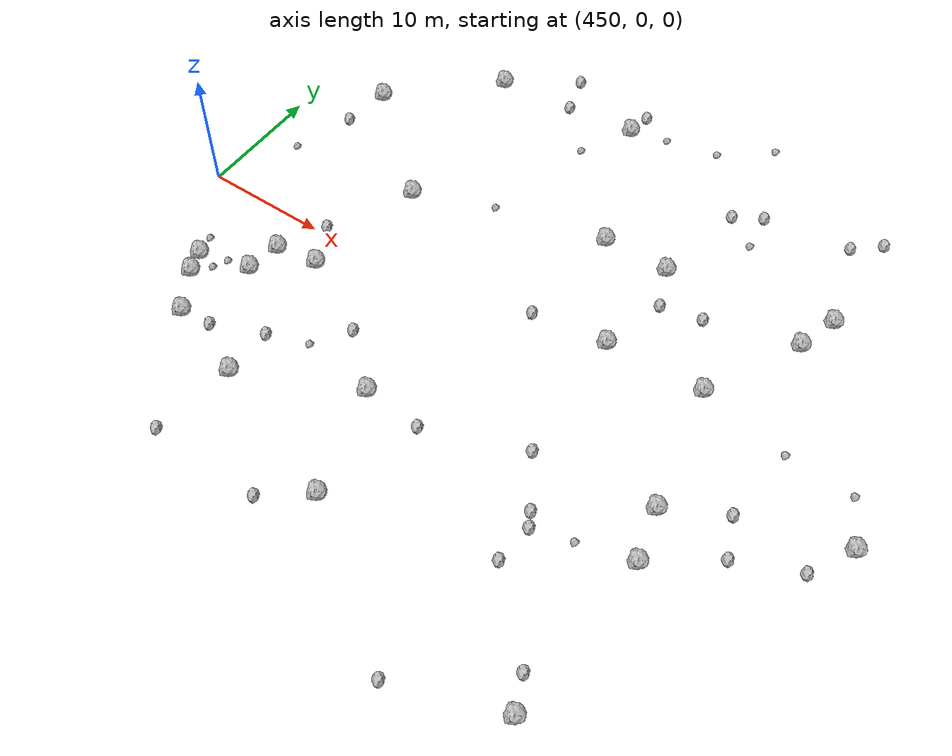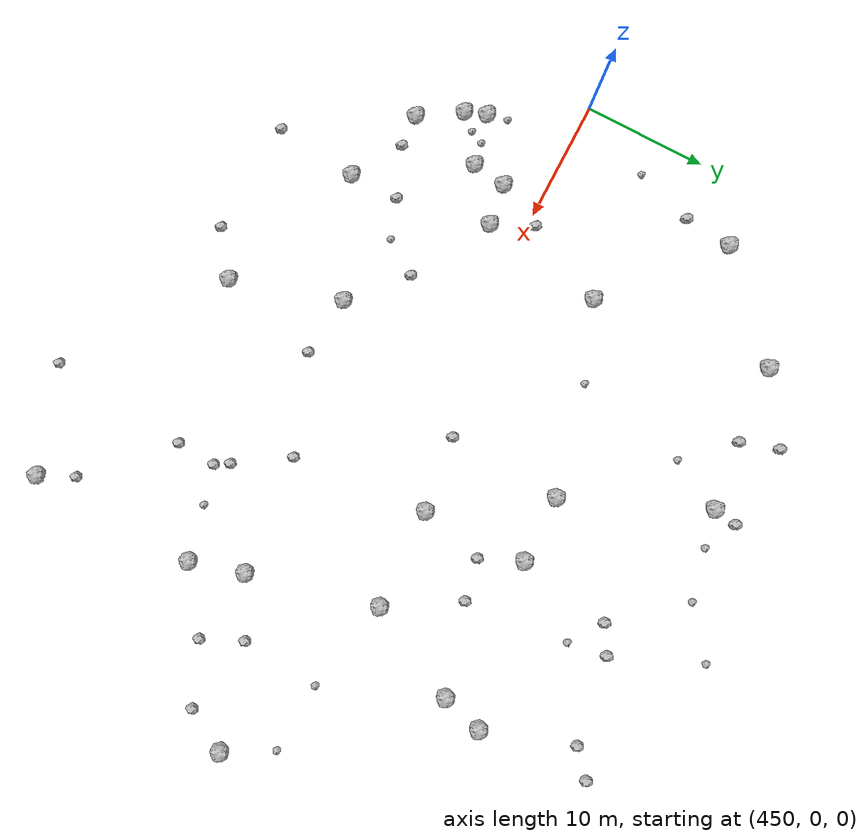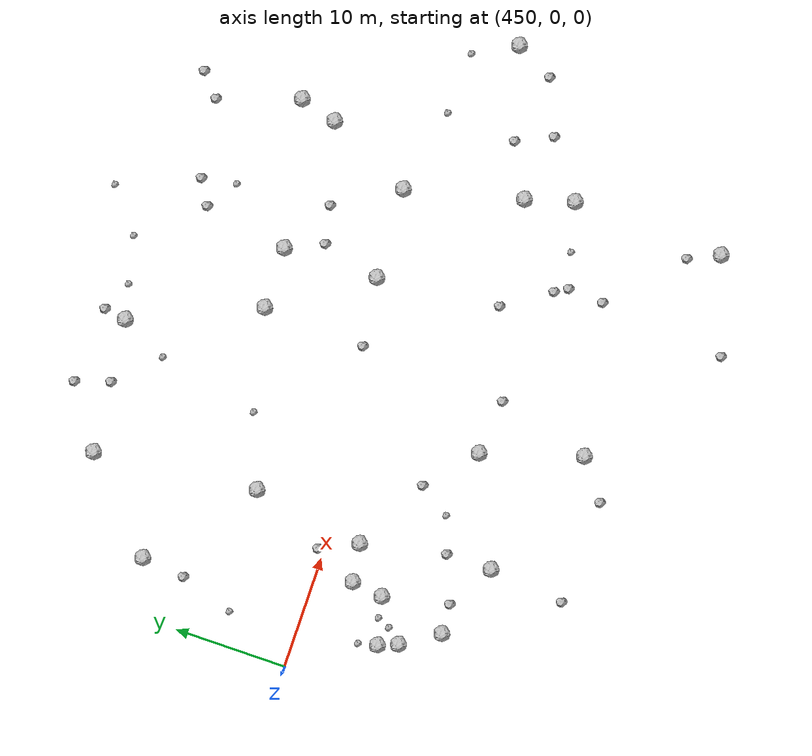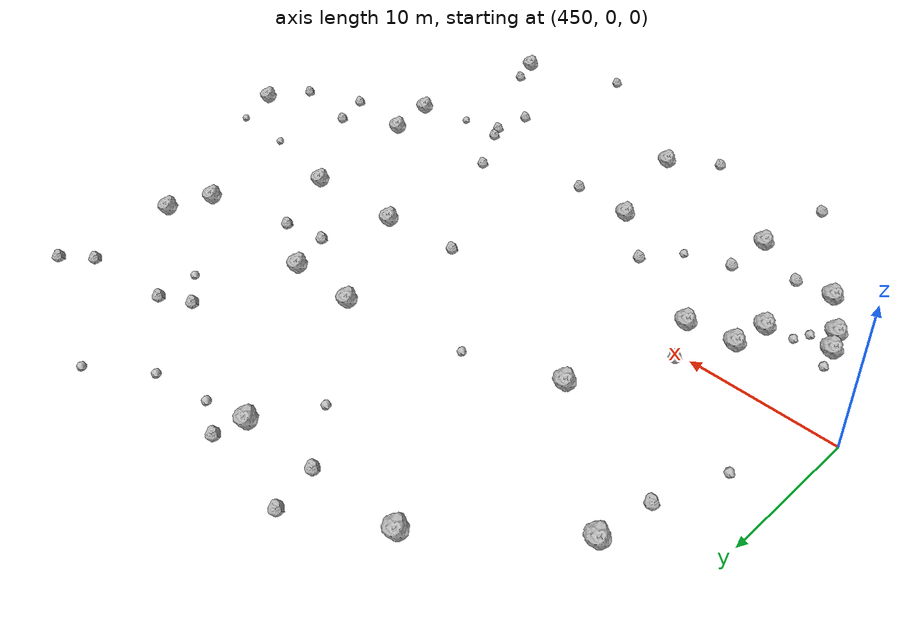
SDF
<sdf version="1.6">
 <world name="default">
  <include><uri>model://sun</uri></include>
  <model name="rock1_12_4">
   <include><uri>model://rock1</uri><pose>484.83097093731084 3.325545638669027 0.5 0 0 0</pose></include>
  </model>
  <model name="rock1_12_5">
   <include><uri>model://rock1</uri><pose>455.13757645230044 -8.771289712090397 0.5 0 0 0</pose></include>
  </model>
  <model name="rock1_12_6">
   <include><uri>model://rock1</uri><pose>459.0104699464236 -3.2490700324286834 0.5 0 0 0</pose></include>
  </model>
  <model name="rock1_12_7">
   <include><uri>model://rock1</uri><pose>495.44114403311744 -6.668408471505099 0.5 0 0 0</pose></include>
  </model>
  <model name="rock1_12_8">
   <include><uri>model://rock1</uri><pose>479.2069406585032 11.75041627582592 0.5 0 0 0</pose></include>
  </model>
  <model name="rock1_12_9">
   <include><uri>model://rock1</uri><pose>508.0243438184506 -1.9325113113793293 0.5 0 0 0</pose></include>
  </model>
  <model name="rock1_12_10">
   <include><uri>model://rock1</uri><pose>463.93454321850726 7.26004059305518 0.5 0 0 0</pose></include>
  </model>
  <model name="rock1_12_11">
   <include><uri>model://rock1</uri><pose>496.36674440483745 -24.489099701905587 0.5 0 0 0</pose></include>
  </model>
  <model name="rock1_12_12">
   <include><uri>model://rock1</uri><pose>455.10086861737676 14.774520526380975 0.5 0 0 0</pose></include>
  </model>
  <model name="rock1_12_13">
   <include><uri>model://rock1</uri><pose>463.923846376431 -14.309825088462569 0.5 0 0 0</pose></include>
  </model>
  <model name="rock1_12_14">
   <include><uri>model://rock1</uri><pose>496.58099019264887 11.218534956652519 0.5 0 0 0</pose></include>
  </model>
  <model name="rock1_12_15">
   <include><uri>model://rock1</uri><pose>474.30339076867637 22.943057540966976 0.5 0 0 0</pose></include>
  </model>
  <model name="rock1_12_16">
   <include><uri>model://rock1</uri><pose>496.66510272746973 -10.930616500304883 0.5 0 0 0</pose></include>
  </model>
  <model name="rock1_12_17">
   <include><uri>model://rock1</uri><pose>462.4604348378871 21.835182263468596 0.5 0 0 0</pose></include>
  </model>
  <model name="rock1_12_18">
   <include><uri>model://rock1</uri><pose>473.187574910856 -10.061053849256705 0.5 0 0 0</pose></include>
  </model>
  <model name="rock1_12_19">
   <include><uri>model://rock1</uri><pose>492.8886170573269 3.6252105904047127 0.5 0 0 0</pose></include>
  </model>
  <model name="rock1_12_20">
   <include><uri>model://rock1</uri><pose>475.8824450402357 -18.84764028188777 0.5 0 0 0</pose></include>
  </model>
  <model name="rock1_12_21">
   <include><uri>model://rock1</uri><pose>454.48647712762653 -7.060763693147841 0.5 0 0 0</pose></include>
  </model>
  <model name="rock1_12_22">
   <include><uri>model://rock1</uri><pose>458.6199486204889 -6.052831843253404 0.5 0 0 0</pose></include>
  </model>
  <model name="rock1_12_23">
   <include><uri>model://rock1</uri><pose>497.50023016965633 14.517083117336774 0.5 0 0 0</pose></include>
  </model>
  <model name="rock1_12_24">
   <include><uri>model://rock1</uri><pose>484.672589142483 11.80662814873834 0.5 0 0 0</pose></include>
  </model>
  <model name="rock1_12_25">
   <include><uri>model://rock1</uri><pose>457.2364615905638 -12.056473234769097 0.5 0 0 0</pose></include>
  </model>
  <model name="rock1_12_26">
   <include><uri>model://rock1</uri><pose>462.367092166351 -2.734252628301391 0.5 0 0 0</pose></include>
  </model>
  <model name="rock2_12_0">
   <include><uri>model://rock2</uri><pose>497.0565487697154 23.435808205242203 0.3 0 0 0</pose></include>
  </model>
  <model name="rock2_12_1">
   <include><uri>model://rock2</uri><pose>499.9586221342303 -4.211416089324491 0.3 0 0 0</pose></include>
  </model>
  <model name="rock2_12_2">
   <include><uri>model://rock2</uri><pose>485.9442134597796 19.383233914602222 0.3 0 0 0</pose></include>
  </model>
  <model name="rock2_12_3">
   <include><uri>model://rock2</uri><pose>478.08063988534394 -10.53912155552226 0.3 0 0 0</pose></include>
  </model>
  <model name="rock2_12_4">
   <include><uri>model://rock2</uri><pose>488.59736342007756 -11.719447932635951 0.3 0 0 0</pose></include>
  </model>
  <model name="rock2_12_5">
   <include><uri>model://rock2</uri><pose>487.9325092511184 -27.355468055642383 0.3 0 0 0</pose></include>
  </model>
  <model name="rock2_12_6">
   <include><uri>model://rock2</uri><pose>488.10133482906656 20.657289351279964 0.3 0 0 0</pose></include>
  </model>
  <model name="rock2_12_7">
   <include><uri>model://rock2</uri><pose>454.61427806703574 10.922377066419571 0.3 0 0 0</pose></include>
  </model>
  <model name="rock2_12_8">
   <include><uri>model://rock2</uri><pose>478.7279641574386 2.561529394962122 0.3 0 0 0</pose></include>
  </model>
  <model name="rock2_12_9">
   <include><uri>model://rock2</uri><pose>495.0798160129422 -21.774589484037755 0.3 0 0 0</pose></include>
  </model>
  <model name="rock2_12_10">
   <include><uri>model://rock2</uri><pose>463.8789603886805 -10.237716526569024 0.3 0 0 0</pose></include>
  </model>
  <model name="rock2_12_11">
   <include><uri>model://rock2</uri><pose>468.89528805865865 -6.307822168110665 0.3 0 0 0</pose></include>
  </model>
  <model name="rock2_12_12">
   <include><uri>model://rock2</uri><pose>472.45745743646313 -21.44828615760226 0.3 0 0 0</pose></include>
  </model>
  <model name="rock2_12_13">
   <include><uri>model://rock2</uri><pose>485.8747486941417 -7.625168707394973 0.3 0 0 0</pose></include>
  </model>
  <model name="rock2_12_14">
   <include><uri>model://rock2</uri><pose>489.0622806232676 -16.036118435781855 0.3 0 0 0</pose></include>
  </model>
  <model name="rock2_12_15">
   <include><uri>model://rock2</uri><pose>459.8370013506658 -11.88934000969131 0.3 0 0 0</pose></include>
  </model>
  <model name="rock2_12_16">
   <include><uri>model://rock2</uri><pose>506.2233256053496 -5.321589283729573 0.3 0 0 0</pose></include>
  </model>
  <model name="rock2_12_17">
   <include><uri>model://rock2</uri><pose>460.73859332854136 0.5911061558281752 0.3 0 0 0</pose></include>
  </model>
  <model name="rock2_12_18">
   <include><uri>model://rock2</uri><pose>495.0777529991358 21.68138411325061 0.3 0 0 0</pose></include>
  </model>
  <model name="rock2_12_19">
   <include><uri>model://rock2</uri><pose>489.45622345605454 9.224490744281994 0.3 0 0 0</pose></include>
  </model>
  <model name="rock2_12_20">
   <include><uri>model://rock2</uri><pose>489.25781479401735 -12.846716468926044 0.3 0 0 0</pose></include>
  </model>
  <model name="rock2_12_21">
   <include><uri>model://rock2</uri><pose>486.1327232807397 8.554082896940976 0.3 0 0 0</pose></include>
  </model>
  <model name="rock2_12_22">
   <include><uri>model://rock2</uri><pose>501.4265324139992 -7.3802091153659966 0.3 0 0 0</pose></include>
  </model>
  <model name="rock2_12_23">
   <include><uri>model://rock2</uri><pose>467.7190918709737 25.450117913104975 0.3 0 0 0</pose></include>
  </model>
  <model name="rock2_12_24">
   <include><uri>model://rock2</uri><pose>474.5781172371373 24.944811360376647 0.3 0 0 0</pose></include>
  </model>
  <model name="rock2_12_25">
   <include><uri>model://rock2</uri><pose>463.14934818870455 -21.064713276288312 0.3 0 0 0</pose></include>
  </model>
  <model name="rock2_12_26">
   <include><uri>model://rock2</uri><pose>468.69089806448505 22.389283832179444 0.3 0 0 0</pose></include>
  </model>
  <model name="rock3_12_0">
   <include><uri>model://rock3</uri><pose>492.3374813697724 -12.038025287658613 0.2 0 0 0</pose></include>
  </model>
  <model name="rock3_12_1">
   <include><uri>model://rock3</uri><pose>456.1639189465177 -7.529679296896482 0.2 0 0 0</pose></include>
  </model>
  <model name="rock3_12_2">
   <include><uri>model://rock3</uri><pose>467.03422299217686 -9.123333310731677 0.2 0 0 0</pose></include>
  </model>
  <model name="rock3_12_3">
   <include><uri>model://rock3</uri><pose>505.9542896987207 1.7886245250560258 0.2 0 0 0</pose></include>
  </model>
  <model name="rock3_12_4">
   <include><uri>model://rock3</uri><pose>477.2602103591629 23.675933837352147 0.2 0 0 0</pose></include>
  </model>
  <model name="rock3_12_5">
   <include><uri>model://rock3</uri><pose>453.9943414017395 -5.418204667419062 0.2 0 0 0</pose></include>
  </model>
  <model name="rock3_12_6">
   <include><uri>model://rock3</uri><pose>500.3890413514966 2.0767927474840633 0.2 0 0 0</pose></include>
  </model>
  <model name="rock3_12_7">
   <include><uri>model://rock3</uri><pose>481.4021343606775 24.611163447049897 0.2 0 0 0</pose></include>
  </model>
  <model name="rock3_12_8">
   <include><uri>model://rock3</uri><pose>485.1127586153519 27.601916007907022 0.2 0 0 0</pose></include>
  </model>
  <model name="rock3_12_9">
   <include><uri>model://rock3</uri><pose>456.67499981938425 -6.403340279677916 0.2 0 0 0</pose></include>
  </model>
  <model name="rock3_12_10">
   <include><uri>model://rock3</uri><pose>488.580904258932 17.53857687403491 0.2 0 0 0</pose></include>
  </model>
  <model name="rock3_12_11">
   <include><uri>model://rock3</uri><pose>472.16102487085834 18.783733028180052 0.2 0 0 0</pose></include>
  </model>
  <model name="rock3_12_12">
   <include><uri>model://rock3</uri><pose>453.0147611090829 6.106034730700692 0.2 0 0 0</pose></include>
  </model>
  <model name="rock3_12_13">
   <include><uri>model://rock3</uri><pose>470.1795748523279 9.717104770507206 0.2 0 0 0</pose></include>
  </model>
 </world>
</sdf>
